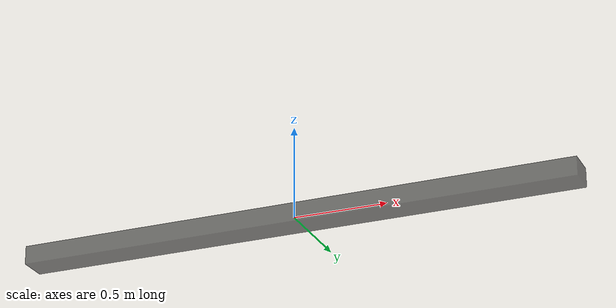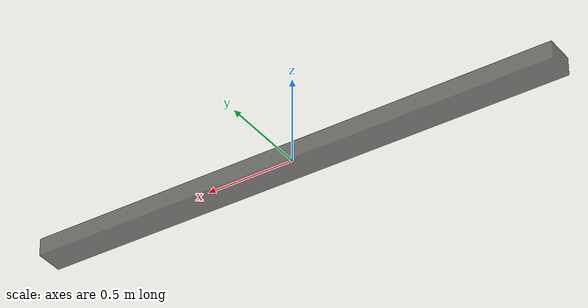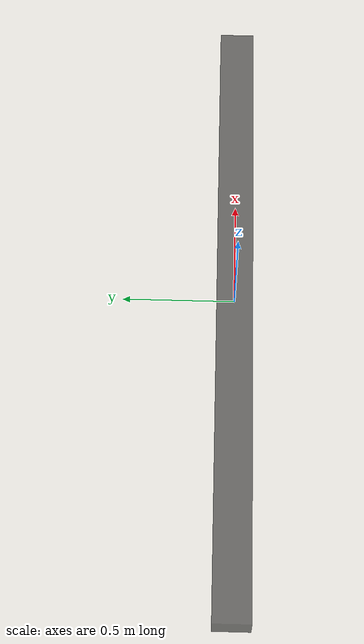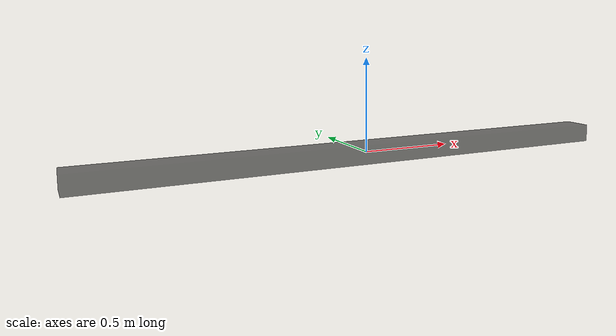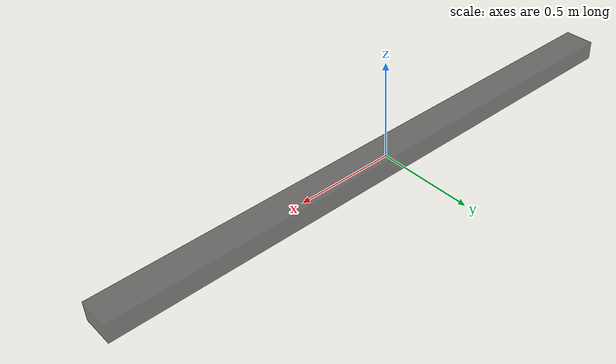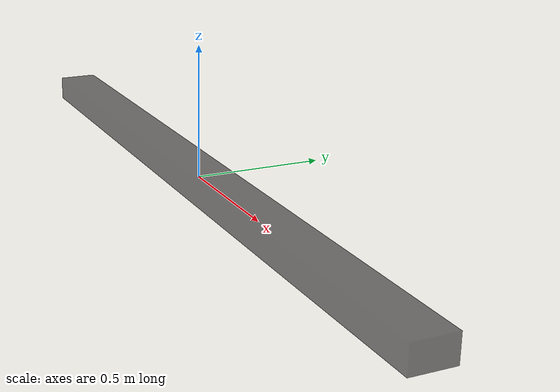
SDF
<?xml version="1.0"?>
<sdf version="1.7">
  <model name="block">
    <link name="block">
      <inertial>
        <pose>0 0 0 0 0 0</pose>
        <mass>.5</mass>
        <!-- Inertia values were calculated to be consistent with the mass and
             geometry size, assuming a uniform density. -->
        <inertia>
          <ixx>0.001483</ixx>
          <ixy>0</ixy>
          <ixz>0</ixz>
          <iyy>0.37541667</iyy>
          <iyz>0</iyz>
          <izz>0.37606667</izz>
        </inertia>
      </inertial>
      <visual name="block">
        <pose>0 0 0.0 0 0 0</pose>
        <geometry>
          <box>
            <size>3 0.16 0.1</size>
          </box>
        </geometry>
        <material>
          <diffuse>0.1 0.1 0.1 0.6</diffuse>
        </material>
      </visual>
      <collision name="block">
        <pose>0 0 0.0 0 0 0</pose>
        <geometry>
          <box>
            <size>3 0.16 0.1</size>
          </box>
        </geometry>
        <drake:proximity_properties>
          <drake:rigid_hydroelastic/>
          <drake:hydroelastic_modulus> 3.0e7 </drake:hydroelastic_modulus>
          <drake:mesh_resolution_hint> 0.02 </drake:mesh_resolution_hint>
          <drake:hunt_crossley_dissipation>10</drake:hunt_crossley_dissipation>
	  <drake:mu_static>1.0</drake:mu_static>
          <drake:mu_dynamic>1.0</drake:mu_dynamic>
        </drake:proximity_properties>
      </collision>
    </link>
  </model>
</sdf>
